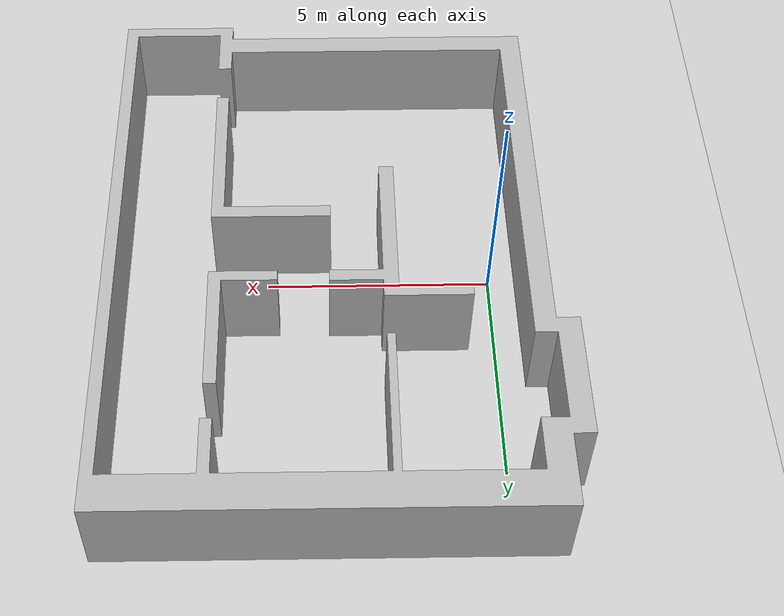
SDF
<?xml version="1.0"?>
<sdf version="1.6">
  <world name="rein_experiment">
    <light name="sun" type="directional">
      <direction>0.5 0.1 -0.9</direction>
      <pose>0 0 10 0 0 0</pose>
      <specular>0.2 0.2 0.2 1</specular>
      <cast_shadows>true</cast_shadows>
      <diffuse>0.8 0.8 0.8 1</diffuse>
      <attenuation>
        <range>1000</range>
        <quadratic>0.001</quadratic>
        <constant>0.9</constant>
        <linear>0.01</linear>
      </attenuation>
    </light>
    <model name="corridor_start" type="waypoint">
      <pose>7.3 5.6 0 0 0 0</pose>
      <static>true</static>
    </model>
    <model name="corridor_end" type="waypoint">
      <pose>7.3 -5.8 0 0 0 0</pose>
      <static>true</static>
    </model>
    <model name="chillout_corner" type="waypoint">
      <pose>5.5 -1.0 0 0 0 0</pose>
      <static>true</static>
    </model>
    <model name="bedroom" type="waypoint">
      <pose>3.1 5.6 0 0 0 0</pose>
      <static>true</static>
    </model>
    <model name="living_room" type="waypoint">
      <pose>0 -5.0 0 0 0 0</pose>
      <static>true</static>
    </model>
    <include>
      <pose>0 0 0 0 0 0</pose>
      <name>walls</name>
      <uri>model://rein_experiment/walls</uri>
    </include>
    <include>
      <pose>0 0 0 0 0 0</pose>
      <name>floor</name>
      <uri>model://ground_plane</uri>
    </include>
    <physics type="ode">
      <real_time_update_rate>333.0</real_time_update_rate>
      <max_step_size>0.003</max_step_size>
      <ode>
        <constraints>
          <cfm>0.0001</cfm>
        </constraints>
        <solver>
          <type>quick</type>
          <iters>100</iters>
        </solver>
      </ode>
    </physics>
  </world>
</sdf>

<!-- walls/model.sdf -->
<sdf version="1.6">
  <model name="rein_experiment/walls">
    <link name="1_link">
      <collision name="1_col">
        <geometry>
          <mesh>
            <uri>model://rein_experiment/walls/shape/heightmap.stl</uri>
          </mesh>
        </geometry>
      </collision>
      <visual name="1_vis">
        <geometry>
          <mesh>
            <uri>model://rein_experiment/walls/shape/heightmap.stl</uri>
          </mesh>
        </geometry>
      </visual>
      <pose>0 0 0 0 0 0</pose>
    </link>
    <static>true</static>
  </model>
</sdf>
